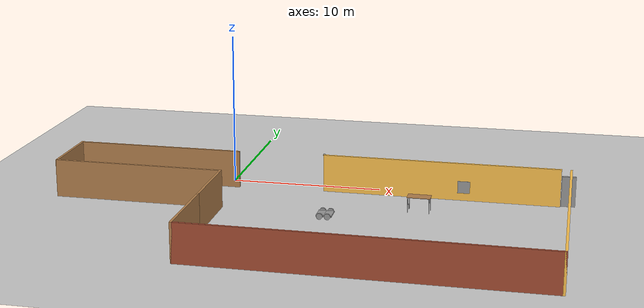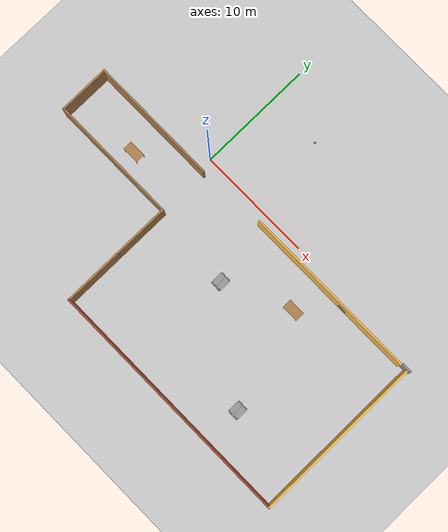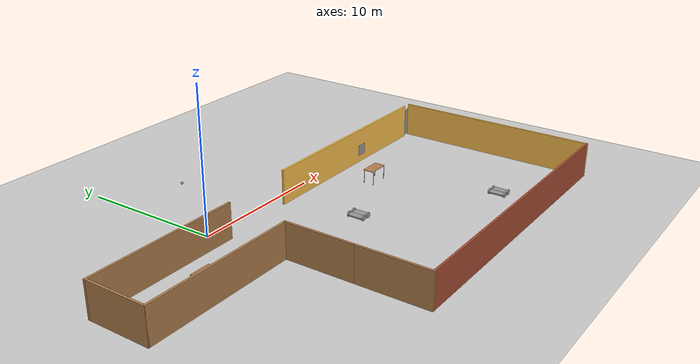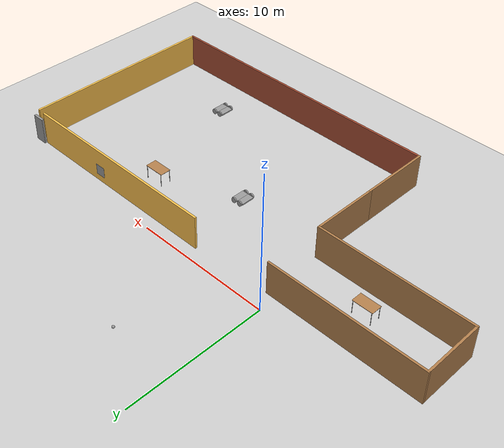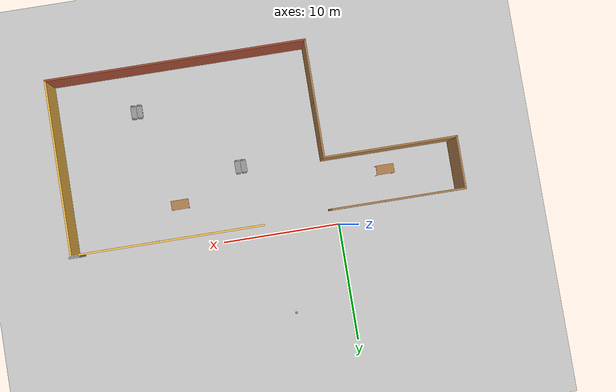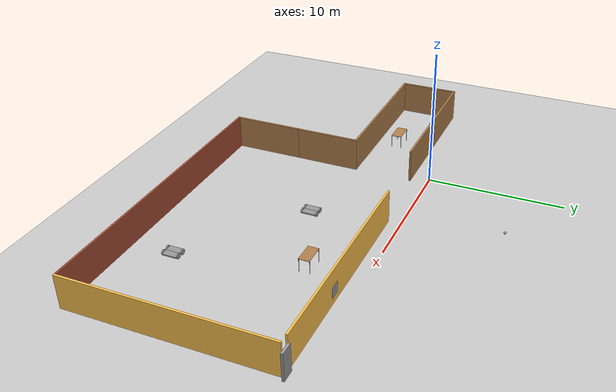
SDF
<sdf version="1.6">
 <world name="default">
  <plugin name="hello" filename="libhello.so"/>
  <light name="sun" type="directional">
   <pose>0 0 10 0 -0 0</pose>
   <diffuse>0.8 0.8 0.8 1</diffuse>
   <specular>0.2 0.2 0.2 1</specular>
   <attenuation>
    <range>1000</range>
    <constant>0.9</constant>
    <linear>0.01</linear>
    <quadratic>0.001</quadratic>
   </attenuation>
   <direction>-0.5 0.1 -0.9</direction>
  </light>
  <model name="ground_plane">
   <static>1</static>
   <link name="link">
    <collision name="collision">
     <geometry><plane><normal>0 0 1</normal><size>100 100</size></plane></geometry>
     <surface><friction><ode><mu>100</mu><mu2>50</mu2></ode></friction></surface>
    </collision>
    <visual name="visual">
     <cast_shadows>0</cast_shadows>
     <geometry><plane><normal>0 0 1</normal><size>100 100</size></plane></geometry>
     <material>
      <script><uri>file://media/materials/scripts/gazebo.material</uri><name>Gazebo/Grey</name></script>
     </material>
    </visual>
   </link>
  </model>
  <gravity>0 0 -9.8</gravity>
  <magnetic_field>6e-06 2.3e-05 -4.2e-05</magnetic_field>
  <atmosphere type="adiabatic"/>
  <physics name="default_physics" default="0" type="ode">
   <max_step_size>0.001</max_step_size>
   <real_time_factor>1</real_time_factor>
   <real_time_update_rate>1000</real_time_update_rate>
  </physics>
  <scene><ambient>0.4 0.4 0.4 1</ambient><background>0.7 0.7 0.7 1</background><shadows>1</shadows></scene>
  <spherical_coordinates>
   <surface_model>EARTH_WGS84</surface_model>
   <latitude_deg>0</latitude_deg>
   <longitude_deg>0</longitude_deg>
   <elevation>0</elevation>
   <heading_deg>0</heading_deg>
  </spherical_coordinates>
  <model name="myBuilding">
   <pose>6.025 -8.30286 0 0 -0 0</pose>
   <link name="Door_0">
    <collision name="Door_0_Collision">
     <geometry><box><size>0.9 0.17 2</size></box></geometry>
     <pose>0 0 1 0 -0 0</pose>
    </collision>
    <visual name="Door_0_Visual">
     <pose>0 0 1 0 -0 0</pose>
     <geometry><box><size>0.9 0.17 2</size></box></geometry>
     <material>
      <script><uri>file://media/materials/scripts/gazebo.material</uri><name>Gazebo/Grey</name></script>
     </material>
    </visual>
    <pose>16.3571 7.49805 0 0 -0 0</pose>
   </link>
   <link name="Wall_0">
    <collision name="Wall_0_Collision">
     <geometry><box><size>11.25 0.15 2.5</size></box></geometry>
     <pose>0 0 1.25 0 -0 0</pose>
    </collision>
    <visual name="Wall_0_Visual">
     <pose>0 0 1.25 0 -0 0</pose>
     <geometry><box><size>11.25 0.15 2.5</size></box></geometry>
     <material>
      <script><uri>file://media/materials/scripts/gazebo.material</uri><name>Gazebo/Wood</name></script>
      <ambient>1 1 1 1</ambient>
     </material>
     <meta><layer>0</layer></meta>
    </visual>
    <pose>-10.925 6.96286 0 0 -0 3.14159</pose>
   </link>
   <link name="Wall_1">
    <collision name="Wall_1_Collision">
     <geometry><box><size>4.5 0.15 2.5</size></box></geometry>
     <pose>0 0 1.25 0 -0 0</pose>
    </collision>
    <visual name="Wall_1_Visual">
     <pose>0 0 1.25 0 -0 0</pose>
     <geometry><box><size>4.5 0.15 2.5</size></box></geometry>
     <material>
      <script><uri>file://media/materials/scripts/gazebo.material</uri><name>Gazebo/Wood</name></script>
      <ambient>1 1 1 1</ambient>
     </material>
     <meta><layer>0</layer></meta>
    </visual>
    <pose>-16.475 4.78786 0 0 0 -1.5708</pose>
   </link>
   <link name="Wall_2">
    <collision name="Wall_2_Collision">
     <geometry><box><size>11.25 0.15 2.5</size></box></geometry>
     <pose>0 0 1.25 0 -0 0</pose>
    </collision>
    <visual name="Wall_2_Visual">
     <pose>0 0 1.25 0 -0 0</pose>
     <geometry><box><size>11.25 0.15 2.5</size></box></geometry>
     <material>
      <script><uri>file://media/materials/scripts/gazebo.material</uri><name>Gazebo/Wood</name></script>
      <ambient>1 1 1 1</ambient>
     </material>
     <meta><layer>0</layer></meta>
    </visual>
    <pose>-10.925 2.61286 0 0 -0 0</pose>
   </link>
   <link name="Wall_3">
    <collision name="Wall_3_Collision">
     <geometry><box><size>5 0.15 2.5</size></box></geometry>
     <pose>0 0 1.25 0 -0 0</pose>
    </collision>
    <visual name="Wall_3_Visual">
     <pose>0 0 1.25 0 -0 0</pose>
     <geometry><box><size>5 0.15 2.5</size></box></geometry>
     <material>
      <script><uri>file://media/materials/scripts/gazebo.material</uri><name>Gazebo/Wood</name></script>
      <ambient>1 1 1 1</ambient>
     </material>
     <meta><layer>0</layer></meta>
    </visual>
    <pose>-5.375 0.187858 0 0 0 -1.5708</pose>
   </link>
   <link name="Wall_4">
    <collision name="Wall_4_Collision">
     <geometry><box><size>5.25 0.15 2.5</size></box></geometry>
     <pose>0 0 1.25 0 -0 0</pose>
    </collision>
    <visual name="Wall_4_Visual">
     <pose>0 0 1.25 0 -0 0</pose>
     <geometry><box><size>5.25 0.15 2.5</size></box></geometry>
     <material>
      <script><uri>file://media/materials/scripts/gazebo.material</uri><name>Gazebo/Wood</name></script>
      <ambient>1 1 1 1</ambient>
     </material>
     <meta><layer>0</layer></meta>
    </visual>
    <pose>-5.375 -4.78714 0 0 0 -1.5708</pose>
   </link>
   <link name="Wall_5">
    <collision name="Wall_5_Collision">
     <geometry><box><size>22 0.15 2.5</size></box></geometry>
     <pose>0 0 1.25 0 -0 0</pose>
    </collision>
    <visual name="Wall_5_Visual">
     <pose>0 0 1.25 0 -0 0</pose>
     <geometry><box><size>22 0.15 2.5</size></box></geometry>
     <material>
      <script><uri>file://media/materials/scripts/gazebo.material</uri><name>Gazebo/Bricks</name></script>
      <ambient>1 1 1 1</ambient>
     </material>
     <meta><layer>0</layer></meta>
    </visual>
    <pose>5.55 -7.33714 0 0 -0 0</pose>
   </link>
   <link name="Wall_6">
    <collision name="Wall_6_Collision">
     <geometry><box><size>14.75 0.15 2.5</size></box></geometry>
     <pose>0 0 1.25 0 -0 0</pose>
    </collision>
    <visual name="Wall_6_Visual">
     <pose>0 0 1.25 0 -0 0</pose>
     <geometry><box><size>14.75 0.15 2.5</size></box></geometry>
     <material>
      <script><uri>file://media/materials/scripts/gazebo.material</uri><name>Gazebo/Grey</name></script>
      <ambient>1 0.764706 0.305882 1</ambient>
     </material>
     <meta><layer>0</layer></meta>
    </visual>
    <pose>16.475 -0.037143 0 0 -0 1.5708</pose>
   </link>
   <link name="Wall_8">
    <collision name="Wall_8_Collision">
     <geometry><box><size>15.5 0.15 2.5</size></box></geometry>
     <pose>0 0 1.25 0 -0 0</pose>
    </collision>
    <visual name="Wall_8_Visual">
     <pose>0 0 1.25 0 -0 0</pose>
     <geometry><box><size>15.5 0.15 2.5</size></box></geometry>
     <material>
      <script><uri>file://media/materials/scripts/gazebo.material</uri><name>Gazebo/Grey</name></script>
      <ambient>1 0.764706 0.305882 1</ambient>
     </material>
     <meta><layer>0</layer></meta>
    </visual>
    <pose>8.11897 7.33714 0 0 -0 3.14159</pose>
   </link>
   <link name="Window_0">
    <collision name="Window_0_Collision">
     <geometry><box><size>0.8 0.17 0.8</size></box></geometry>
     <pose>0 0 0.4 0 -0 0</pose>
    </collision>
    <visual name="Window_0_Visual">
     <pose>0 0 0.4 0 -0 0</pose>
     <geometry><box><size>0.8 0.17 0.8</size></box></geometry>
     <material>
      <script><uri>file://media/materials/scripts/gazebo.material</uri><name>Gazebo/Grey</name></script>
     </material>
    </visual>
    <pose>9.67944 7.33714 0.5 0 -0 0</pose>
   </link>
   <static>1</static>
  </model>
  <model name="table">
   <static>1</static>
   <link name="link">
    <collision name="surface">
     <pose>0 0 1 0 -0 0</pose>
     <geometry><box><size>1.5 0.8 0.03</size></box></geometry>
     <surface><friction><ode><mu>0.6</mu><mu2>0.6</mu2></ode></friction></surface>
    </collision>
    <visual name="visual1">
     <pose>0 0 1 0 -0 0</pose>
     <geometry><box><size>1.5 0.8 0.03</size></box></geometry>
     <material>
      <script><uri>file://media/materials/scripts/gazebo.material</uri><name>Gazebo/Wood</name></script>
     </material>
    </visual>
    <collision name="front_left_leg">
     <pose>0.68 0.38 0.5 0 -0 0</pose>
     <geometry><cylinder><radius>0.02</radius><length>1</length></cylinder></geometry>
    </collision>
    <visual name="front_left_leg">
     <pose>0.68 0.38 0.5 0 -0 0</pose>
     <geometry><cylinder><radius>0.02</radius><length>1</length></cylinder></geometry>
     <material>
      <script><uri>file://media/materials/scripts/gazebo.material</uri><name>Gazebo/Grey</name></script>
     </material>
    </visual>
    <collision name="front_right_leg">
     <pose>0.68 -0.38 0.5 0 -0 0</pose>
     <geometry><cylinder><radius>0.02</radius><length>1</length></cylinder></geometry>
    </collision>
    <visual name="front_right_leg">
     <pose>0.68 -0.38 0.5 0 -0 0</pose>
     <geometry><cylinder><radius>0.02</radius><length>1</length></cylinder></geometry>
     <material>
      <script><uri>file://media/materials/scripts/gazebo.material</uri><name>Gazebo/Grey</name></script>
     </material>
    </visual>
    <collision name="back_right_leg">
     <pose>-0.68 -0.38 0.5 0 -0 0</pose>
     <geometry><cylinder><radius>0.02</radius><length>1</length></cylinder></geometry>
    </collision>
    <visual name="back_right_leg">
     <pose>-0.68 -0.38 0.5 0 -0 0</pose>
     <geometry><cylinder><radius>0.02</radius><length>1</length></cylinder></geometry>
     <material>
      <script><uri>file://media/materials/scripts/gazebo.material</uri><name>Gazebo/Grey</name></script>
     </material>
    </visual>
    <collision name="back_left_leg">
     <pose>-0.68 0.38 0.5 0 -0 0</pose>
     <geometry><cylinder><radius>0.02</radius><length>1</length></cylinder></geometry>
    </collision>
    <visual name="back_left_leg">
     <pose>-0.68 0.38 0.5 0 -0 0</pose>
     <geometry><cylinder><radius>0.02</radius><length>1</length></cylinder></geometry>
     <material>
      <script><uri>file://media/materials/scripts/gazebo.material</uri><name>Gazebo/Grey</name></script>
     </material>
    </visual>
   </link>
   <pose>13.1599 -3.79906 0 0 -0 0</pose>
  </model>
  <model name="table_0">
   <static>1</static>
   <link name="link">
    <collision name="surface">
     <pose>0 0 1 0 -0 0</pose>
     <geometry><box><size>1.5 0.8 0.03</size></box></geometry>
     <surface><friction><ode><mu>0.6</mu><mu2>0.6</mu2></ode></friction></surface>
    </collision>
    <visual name="visual1">
     <pose>0 0 1 0 -0 0</pose>
     <geometry><box><size>1.5 0.8 0.03</size></box></geometry>
     <material>
      <script><uri>file://media/materials/scripts/gazebo.material</uri><name>Gazebo/Wood</name></script>
     </material>
    </visual>
    <collision name="front_left_leg">
     <pose>0.68 0.38 0.5 0 -0 0</pose>
     <geometry><cylinder><radius>0.02</radius><length>1</length></cylinder></geometry>
    </collision>
    <visual name="front_left_leg">
     <pose>0.68 0.38 0.5 0 -0 0</pose>
     <geometry><cylinder><radius>0.02</radius><length>1</length></cylinder></geometry>
     <material>
      <script><uri>file://media/materials/scripts/gazebo.material</uri><name>Gazebo/Grey</name></script>
     </material>
    </visual>
    <collision name="front_right_leg">
     <pose>0.68 -0.38 0.5 0 -0 0</pose>
     <geometry><cylinder><radius>0.02</radius><length>1</length></cylinder></geometry>
    </collision>
    <visual name="front_right_leg">
     <pose>0.68 -0.38 0.5 0 -0 0</pose>
     <geometry><cylinder><radius>0.02</radius><length>1</length></cylinder></geometry>
     <material>
      <script><uri>file://media/materials/scripts/gazebo.material</uri><name>Gazebo/Grey</name></script>
     </material>
    </visual>
    <collision name="back_right_leg">
     <pose>-0.68 -0.38 0.5 0 -0 0</pose>
     <geometry><cylinder><radius>0.02</radius><length>1</length></cylinder></geometry>
    </collision>
    <visual name="back_right_leg">
     <pose>-0.68 -0.38 0.5 0 -0 0</pose>
     <geometry><cylinder><radius>0.02</radius><length>1</length></cylinder></geometry>
     <material>
      <script><uri>file://media/materials/scripts/gazebo.material</uri><name>Gazebo/Grey</name></script>
     </material>
    </visual>
    <collision name="back_left_leg">
     <pose>-0.68 0.38 0.5 0 -0 0</pose>
     <geometry><cylinder><radius>0.02</radius><length>1</length></cylinder></geometry>
    </collision>
    <visual name="back_left_leg">
     <pose>-0.68 0.38 0.5 0 -0 0</pose>
     <geometry><cylinder><radius>0.02</radius><length>1</length></cylinder></geometry>
     <material>
      <script><uri>file://media/materials/scripts/gazebo.material</uri><name>Gazebo/Grey</name></script>
     </material>
    </visual>
   </link>
   <pose>-4.49489 -4.01415 0 0 -0 0</pose>
  </model>
  <model name="newRobot">
   <link name="link_3">
    <pose>0.249895 0 0 0 -0 0</pose>
    <inertial>
     <mass>1</mass>
     <inertia>
      <ixx>0.166667</ixx>
      <ixy>0</ixy>
      <ixz>0</ixz>
      <iyy>0.166667</iyy>
      <iyz>0</iyz>
      <izz>0.166667</izz>
     </inertia>
    </inertial>
    <visual name="visual">
     <geometry><box><size>0.5 1 0.1</size></box></geometry>
     <material>
      <lighting>1</lighting>
      <script><uri>file://media/materials/scripts/gazebo.material</uri><name>Gazebo/Grey</name></script>
      <shader type="pixel"><normal_map>__default__</normal_map></shader>
      <ambient>0.3 0.3 0.3 1</ambient>
      <diffuse>0.7 0.7 0.7 1</diffuse>
      <specular>0.01 0.01 0.01 1</specular>
      <emissive>0 0 0 1</emissive>
     </material>
    </visual>
    <collision name="collision">
     <geometry><box><size>0.5 1 0.1</size></box></geometry>
     <surface>
      <friction>
       <ode><mu>1</mu><mu2>1</mu2><fdir1>0 0 0</fdir1><slip1>0</slip1><slip2>0</slip2></ode>
       <torsional>
        <coefficient>1</coefficient>
        <patch_radius>0</patch_radius>
        <surface_radius>0</surface_radius>
        <use_patch_radius>1</use_patch_radius>
        <ode><slip>0</slip></ode>
       </torsional>
      </friction>
      <bounce><restitution_coefficient>0</restitution_coefficient><threshold>1e+06</threshold></bounce>
      <contact>
       <collide_without_contact>0</collide_without_contact>
       <collide_without_contact_bitmask>1</collide_without_contact_bitmask>
       <collide_bitmask>1</collide_bitmask>
       <ode>
        <soft_cfm>0</soft_cfm>
        <soft_erp>0.2</soft_erp>
        <kp>1e+13</kp>
        <kd>1</kd>
        <max_vel>0.01</max_vel>
        <min_depth>0</min_depth>
       </ode>
       <bullet>
        <split_impulse>1</split_impulse>
        <split_impulse_penetration_threshold>-0.01</split_impulse_penetration_threshold>
        <soft_cfm>0</soft_cfm>
        <soft_erp>0.2</soft_erp>
        <kp>1e+13</kp>
        <kd>1</kd>
       </bullet>
      </contact>
     </surface>
    </collision>
   </link>
   <link name="link_3_clone">
    <pose>-0.249895 0 0 0 -0 0</pose>
    <inertial>
     <mass>1</mass>
     <inertia>
      <ixx>0.166667</ixx>
      <ixy>0</ixy>
      <ixz>0</ixz>
      <iyy>0.166667</iyy>
      <iyz>0</iyz>
      <izz>0.166667</izz>
     </inertia>
    </inertial>
    <visual name="visual">
     <geometry><box><size>0.5 1 0.1</size></box></geometry>
     <material>
      <lighting>1</lighting>
      <script><uri>file://media/materials/scripts/gazebo.material</uri><name>Gazebo/Grey</name></script>
      <shader type="pixel"><normal_map>__default__</normal_map></shader>
      <ambient>0.3 0.3 0.3 1</ambient>
      <diffuse>0.7 0.7 0.7 1</diffuse>
      <specular>0.01 0.01 0.01 1</specular>
      <emissive>0 0 0 1</emissive>
     </material>
    </visual>
    <collision name="collision">
     <geometry><box><size>0.5 1 0.1</size></box></geometry>
     <surface>
      <friction>
       <ode><mu>1</mu><mu2>1</mu2><fdir1>0 0 0</fdir1><slip1>0</slip1><slip2>0</slip2></ode>
       <torsional>
        <coefficient>1</coefficient>
        <patch_radius>0</patch_radius>
        <surface_radius>0</surface_radius>
        <use_patch_radius>1</use_patch_radius>
        <ode><slip>0</slip></ode>
       </torsional>
      </friction>
      <bounce><restitution_coefficient>0</restitution_coefficient><threshold>1e+06</threshold></bounce>
      <contact>
       <collide_without_contact>0</collide_without_contact>
       <collide_without_contact_bitmask>1</collide_without_contact_bitmask>
       <collide_bitmask>1</collide_bitmask>
       <ode>
        <soft_cfm>0</soft_cfm>
        <soft_erp>0.2</soft_erp>
        <kp>1e+13</kp>
        <kd>1</kd>
        <max_vel>0.01</max_vel>
        <min_depth>0</min_depth>
       </ode>
       <bullet>
        <split_impulse>1</split_impulse>
        <split_impulse_penetration_threshold>-0.01</split_impulse_penetration_threshold>
        <soft_cfm>0</soft_cfm>
        <soft_erp>0.2</soft_erp>
        <kp>1e+13</kp>
        <kd>1</kd>
       </bullet>
      </contact>
     </surface>
    </collision>
   </link>
   <link name="link_4">
    <pose>0.249895 -0.550159 0 1.57 -0 0</pose>
    <inertial>
     <mass>1</mass>
     <inertia><ixx>0.145833</ixx><ixy>0</ixy><ixz>0</ixz><iyy>0.145833</iyy><iyz>0</iyz><izz>0.125</izz></inertia>
    </inertial>
    <visual name="visual">
     <geometry><cylinder><radius>0.2</radius><length>0.1</length></cylinder></geometry>
     <material>
      <lighting>1</lighting>
      <script><uri>file://media/materials/scripts/gazebo.material</uri><name>Gazebo/Grey</name></script>
      <shader type="pixel"><normal_map>__default__</normal_map></shader>
      <ambient>0.3 0.3 0.3 1</ambient>
      <diffuse>0.7 0.7 0.7 1</diffuse>
      <specular>0.01 0.01 0.01 1</specular>
      <emissive>0 0 0 1</emissive>
     </material>
    </visual>
    <collision name="collision">
     <geometry><cylinder><radius>0.2</radius><length>0.1</length></cylinder></geometry>
     <surface>
      <friction>
       <ode><mu>1</mu><mu2>1</mu2><fdir1>0 0 0</fdir1><slip1>0</slip1><slip2>0</slip2></ode>
       <torsional>
        <coefficient>1</coefficient>
        <patch_radius>0</patch_radius>
        <surface_radius>0</surface_radius>
        <use_patch_radius>1</use_patch_radius>
        <ode><slip>0</slip></ode>
       </torsional>
      </friction>
      <bounce><restitution_coefficient>0</restitution_coefficient><threshold>1e+06</threshold></bounce>
      <contact>
       <collide_without_contact>0</collide_without_contact>
       <collide_without_contact_bitmask>1</collide_without_contact_bitmask>
       <collide_bitmask>1</collide_bitmask>
       <ode>
        <soft_cfm>0</soft_cfm>
        <soft_erp>0.2</soft_erp>
        <kp>1e+13</kp>
        <kd>1</kd>
        <max_vel>0.01</max_vel>
        <min_depth>0</min_depth>
       </ode>
       <bullet>
        <split_impulse>1</split_impulse>
        <split_impulse_penetration_threshold>-0.01</split_impulse_penetration_threshold>
        <soft_cfm>0</soft_cfm>
        <soft_erp>0.2</soft_erp>
        <kp>1e+13</kp>
        <kd>1</kd>
       </bullet>
      </contact>
     </surface>
    </collision>
   </link>
   <link name="link_4_clone">
    <pose>0.249895 0.550159 0 1.57 -0 0</pose>
    <inertial>
     <mass>1</mass>
     <inertia><ixx>0.145833</ixx><ixy>0</ixy><ixz>0</ixz><iyy>0.145833</iyy><iyz>0</iyz><izz>0.125</izz></inertia>
    </inertial>
    <visual name="visual">
     <geometry><cylinder><radius>0.2</radius><length>0.1</length></cylinder></geometry>
     <material>
      <lighting>1</lighting>
      <script><uri>file://media/materials/scripts/gazebo.material</uri><name>Gazebo/Grey</name></script>
      <shader type="pixel"><normal_map>__default__</normal_map></shader>
      <ambient>0.3 0.3 0.3 1</ambient>
      <diffuse>0.7 0.7 0.7 1</diffuse>
      <specular>0.01 0.01 0.01 1</specular>
      <emissive>0 0 0 1</emissive>
     </material>
    </visual>
    <collision name="collision">
     <geometry><cylinder><radius>0.2</radius><length>0.1</length></cylinder></geometry>
     <surface>
      <friction>
       <ode><mu>1</mu><mu2>1</mu2><fdir1>0 0 0</fdir1><slip1>0</slip1><slip2>0</slip2></ode>
       <torsional>
        <coefficient>1</coefficient>
        <patch_radius>0</patch_radius>
        <surface_radius>0</surface_radius>
        <use_patch_radius>1</use_patch_radius>
        <ode><slip>0</slip></ode>
       </torsional>
      </friction>
      <bounce><restitution_coefficient>0</restitution_coefficient><threshold>1e+06</threshold></bounce>
      <contact>
       <collide_without_contact>0</collide_without_contact>
       <collide_without_contact_bitmask>1</collide_without_contact_bitmask>
       <collide_bitmask>1</collide_bitmask>
       <ode>
        <soft_cfm>0</soft_cfm>
        <soft_erp>0.2</soft_erp>
        <kp>1e+13</kp>
        <kd>1</kd>
        <max_vel>0.01</max_vel>
        <min_depth>0</min_depth>
       </ode>
       <bullet>
        <split_impulse>1</split_impulse>
        <split_impulse_penetration_threshold>-0.01</split_impulse_penetration_threshold>
        <soft_cfm>0</soft_cfm>
        <soft_erp>0.2</soft_erp>
        <kp>1e+13</kp>
        <kd>1</kd>
       </bullet>
      </contact>
     </surface>
    </collision>
   </link>
   <link name="link_4_clone_0">
    <pose>-0.249895 0.550159 0 1.57 -0 0</pose>
    <inertial>
     <mass>1</mass>
     <inertia><ixx>0.145833</ixx><ixy>0</ixy><ixz>0</ixz><iyy>0.145833</iyy><iyz>0</iyz><izz>0.125</izz></inertia>
    </inertial>
    <visual name="visual">
     <geometry><cylinder><radius>0.2</radius><length>0.1</length></cylinder></geometry>
     <material>
      <lighting>1</lighting>
      <script><uri>file://media/materials/scripts/gazebo.material</uri><name>Gazebo/Grey</name></script>
      <shader type="pixel"><normal_map>__default__</normal_map></shader>
      <ambient>0.3 0.3 0.3 1</ambient>
      <diffuse>0.7 0.7 0.7 1</diffuse>
      <specular>0.01 0.01 0.01 1</specular>
      <emissive>0 0 0 1</emissive>
     </material>
    </visual>
    <collision name="collision">
     <geometry><cylinder><radius>0.2</radius><length>0.1</length></cylinder></geometry>
     <surface>
      <friction>
       <ode><mu>1</mu><mu2>1</mu2><fdir1>0 0 0</fdir1><slip1>0</slip1><slip2>0</slip2></ode>
       <torsional>
        <coefficient>1</coefficient>
        <patch_radius>0</patch_radius>
        <surface_radius>0</surface_radius>
        <use_patch_radius>1</use_patch_radius>
        <ode><slip>0</slip></ode>
       </torsional>
      </friction>
      <bounce><restitution_coefficient>0</restitution_coefficient><threshold>1e+06</threshold></bounce>
      <contact>
       <collide_without_contact>0</collide_without_contact>
       <collide_without_contact_bitmask>1</collide_without_contact_bitmask>
       <collide_bitmask>1</collide_bitmask>
       <ode>
        <soft_cfm>0</soft_cfm>
        <soft_erp>0.2</soft_erp>
        <kp>1e+13</kp>
        <kd>1</kd>
        <max_vel>0.01</max_vel>
        <min_depth>0</min_depth>
       </ode>
       <bullet>
        <split_impulse>1</split_impulse>
        <split_impulse_penetration_threshold>-0.01</split_impulse_penetration_threshold>
        <soft_cfm>0</soft_cfm>
        <soft_erp>0.2</soft_erp>
        <kp>1e+13</kp>
        <kd>1</kd>
       </bullet>
      </contact>
     </surface>
    </collision>
   </link>
   <link name="link_4_clone_1">
    <pose>-0.249895 -0.550159 0 1.57 -0 0</pose>
    <inertial>
     <mass>1</mass>
     <inertia><ixx>0.145833</ixx><ixy>0</ixy><ixz>0</ixz><iyy>0.145833</iyy><iyz>0</iyz><izz>0.125</izz></inertia>
    </inertial>
    <visual name="visual">
     <geometry><cylinder><radius>0.2</radius><length>0.1</length></cylinder></geometry>
     <material>
      <lighting>1</lighting>
      <script><uri>file://media/materials/scripts/gazebo.material</uri><name>Gazebo/Grey</name></script>
      <shader type="pixel"><normal_map>__default__</normal_map></shader>
      <ambient>0.3 0.3 0.3 1</ambient>
      <diffuse>0.7 0.7 0.7 1</diffuse>
      <specular>0.01 0.01 0.01 1</specular>
      <emissive>0 0 0 1</emissive>
     </material>
    </visual>
    <collision name="collision">
     <geometry><cylinder><radius>0.2</radius><length>0.1</length></cylinder></geometry>
     <surface>
      <friction>
       <ode><mu>1</mu><mu2>1</mu2><fdir1>0 0 0</fdir1><slip1>0</slip1><slip2>0</slip2></ode>
       <torsional>
        <coefficient>1</coefficient>
        <patch_radius>0</patch_radius>
        <surface_radius>0</surface_radius>
        <use_patch_radius>1</use_patch_radius>
        <ode><slip>0</slip></ode>
       </torsional>
      </friction>
      <bounce><restitution_coefficient>0</restitution_coefficient><threshold>1e+06</threshold></bounce>
      <contact>
       <collide_without_contact>0</collide_without_contact>
       <collide_without_contact_bitmask>1</collide_without_contact_bitmask>
       <collide_bitmask>1</collide_bitmask>
       <ode>
        <soft_cfm>0</soft_cfm>
        <soft_erp>0.2</soft_erp>
        <kp>1e+13</kp>
        <kd>1</kd>
        <max_vel>0.01</max_vel>
        <min_depth>0</min_depth>
       </ode>
       <bullet>
        <split_impulse>1</split_impulse>
        <split_impulse_penetration_threshold>-0.01</split_impulse_penetration_threshold>
        <soft_cfm>0</soft_cfm>
        <soft_erp>0.2</soft_erp>
        <kp>1e+13</kp>
        <kd>1</kd>
       </bullet>
      </contact>
     </surface>
    </collision>
   </link>
   <joint name="link_3_JOINT_0" type="revolute">
    <parent>link_3</parent>
    <child>link_4</child>
    <axis>
     <xyz>1 0 0</xyz>
     <use_parent_model_frame>0</use_parent_model_frame>
     <limit>
      <lower>-1.79769e+308</lower>
      <upper>1.79769e+308</upper>
      <effort>-1</effort>
      <velocity>-1</velocity>
     </limit>
     <dynamics>
      <spring_reference>0</spring_reference>
      <spring_stiffness>0</spring_stiffness>
      <damping>0</damping>
     </dynamics>
    </axis>
    <physics>
     <ode><limit><cfm>0</cfm><erp>0.2</erp></limit><suspension><cfm>0</cfm><erp>0.2</erp></suspension></ode>
    </physics>
   </joint>
   <joint name="link_3_JOINT_1" type="revolute">
    <parent>link_3</parent>
    <child>link_4_clone</child>
    <axis>
     <xyz>1 0 0</xyz>
     <use_parent_model_frame>0</use_parent_model_frame>
     <limit>
      <lower>-1.79769e+308</lower>
      <upper>1.79769e+308</upper>
      <effort>-1</effort>
      <velocity>-1</velocity>
     </limit>
     <dynamics>
      <spring_reference>0</spring_reference>
      <spring_stiffness>0</spring_stiffness>
      <damping>0</damping>
     </dynamics>
    </axis>
    <physics>
     <ode><limit><cfm>0</cfm><erp>0.2</erp></limit><suspension><cfm>0</cfm><erp>0.2</erp></suspension></ode>
    </physics>
   </joint>
   <joint name="link_3_clone_JOINT_3" type="revolute">
    <parent>link_3_clone</parent>
    <child>link_4_clone_1</child>
    <axis>
     <xyz>1 0 0</xyz>
     <use_parent_model_frame>0</use_parent_model_frame>
     <limit>
      <lower>-1.79769e+308</lower>
      <upper>1.79769e+308</upper>
      <effort>-1</effort>
      <velocity>-1</velocity>
     </limit>
     <dynamics>
      <spring_reference>0</spring_reference>
      <spring_stiffness>0</spring_stiffness>
      <damping>0</damping>
     </dynamics>
    </axis>
    <physics>
     <ode><limit><cfm>0</cfm><erp>0.2</erp></limit><suspension><cfm>0</cfm><erp>0.2</erp></suspension></ode>
    </physics>
   </joint>
   <joint name="link_3_clone_JOINT_4" type="revolute">
    <parent>link_3_clone</parent>
    <child>link_4_clone_0</child>
    <axis>
     <xyz>1 0 0</xyz>
     <use_parent_model_frame>0</use_parent_model_frame>
     <limit>
      <lower>-1.79769e+308</lower>
      <upper>1.79769e+308</upper>
      <effort>-1</effort>
      <velocity>-1</velocity>
     </limit>
     <dynamics>
      <spring_reference>0</spring_reference>
      <spring_stiffness>0</spring_stiffness>
      <damping>0</damping>
     </dynamics>
    </axis>
    <physics>
     <ode><limit><cfm>0</cfm><erp>0.2</erp></limit><suspension><cfm>0</cfm><erp>0.2</erp></suspension></ode>
    </physics>
   </joint>
   <static>1</static>
   <allow_auto_disable>0</allow_auto_disable>
   <pose>7.57587 -6.2376 0.27216 0 -0 0</pose>
  </model>
  <model name="newRobot_0">
   <link name="link_3">
    <pose>0.249895 0 0 0 -0 0</pose>
    <inertial>
     <mass>1</mass>
     <inertia>
      <ixx>0.166667</ixx>
      <ixy>0</ixy>
      <ixz>0</ixz>
      <iyy>0.166667</iyy>
      <iyz>0</iyz>
      <izz>0.166667</izz>
     </inertia>
    </inertial>
    <visual name="visual">
     <geometry><box><size>0.5 1 0.1</size></box></geometry>
     <material>
      <lighting>1</lighting>
      <script><uri>file://media/materials/scripts/gazebo.material</uri><name>Gazebo/Grey</name></script>
      <shader type="pixel"><normal_map>__default__</normal_map></shader>
      <ambient>0.3 0.3 0.3 1</ambient>
      <diffuse>0.7 0.7 0.7 1</diffuse>
      <specular>0.01 0.01 0.01 1</specular>
      <emissive>0 0 0 1</emissive>
     </material>
    </visual>
    <collision name="collision">
     <geometry><box><size>0.5 1 0.1</size></box></geometry>
     <surface>
      <friction>
       <ode><mu>1</mu><mu2>1</mu2><fdir1>0 0 0</fdir1><slip1>0</slip1><slip2>0</slip2></ode>
       <torsional>
        <coefficient>1</coefficient>
        <patch_radius>0</patch_radius>
        <surface_radius>0</surface_radius>
        <use_patch_radius>1</use_patch_radius>
        <ode><slip>0</slip></ode>
       </torsional>
      </friction>
      <bounce><restitution_coefficient>0</restitution_coefficient><threshold>1e+06</threshold></bounce>
      <contact>
       <collide_without_contact>0</collide_without_contact>
       <collide_without_contact_bitmask>1</collide_without_contact_bitmask>
       <collide_bitmask>1</collide_bitmask>
       <ode>
        <soft_cfm>0</soft_cfm>
        <soft_erp>0.2</soft_erp>
        <kp>1e+13</kp>
        <kd>1</kd>
        <max_vel>0.01</max_vel>
        <min_depth>0</min_depth>
       </ode>
       <bullet>
        <split_impulse>1</split_impulse>
        <split_impulse_penetration_threshold>-0.01</split_impulse_penetration_threshold>
        <soft_cfm>0</soft_cfm>
        <soft_erp>0.2</soft_erp>
        <kp>1e+13</kp>
        <kd>1</kd>
       </bullet>
      </contact>
     </surface>
    </collision>
   </link>
   <link name="link_3_clone">
    <pose>-0.249895 0 0 0 -0 0</pose>
    <inertial>
     <mass>1</mass>
     <inertia>
      <ixx>0.166667</ixx>
      <ixy>0</ixy>
      <ixz>0</ixz>
      <iyy>0.166667</iyy>
      <iyz>0</iyz>
      <izz>0.166667</izz>
     </inertia>
    </inertial>
    <visual name="visual">
     <geometry><box><size>0.5 1 0.1</size></box></geometry>
     <material>
      <lighting>1</lighting>
      <script><uri>file://media/materials/scripts/gazebo.material</uri><name>Gazebo/Grey</name></script>
      <shader type="pixel"><normal_map>__default__</normal_map></shader>
      <ambient>0.3 0.3 0.3 1</ambient>
      <diffuse>0.7 0.7 0.7 1</diffuse>
      <specular>0.01 0.01 0.01 1</specular>
      <emissive>0 0 0 1</emissive>
     </material>
    </visual>
    <collision name="collision">
     <geometry><box><size>0.5 1 0.1</size></box></geometry>
     <surface>
      <friction>
       <ode><mu>1</mu><mu2>1</mu2><fdir1>0 0 0</fdir1><slip1>0</slip1><slip2>0</slip2></ode>
       <torsional>
        <coefficient>1</coefficient>
        <patch_radius>0</patch_radius>
        <surface_radius>0</surface_radius>
        <use_patch_radius>1</use_patch_radius>
        <ode><slip>0</slip></ode>
       </torsional>
      </friction>
      <bounce><restitution_coefficient>0</restitution_coefficient><threshold>1e+06</threshold></bounce>
      <contact>
       <collide_without_contact>0</collide_without_contact>
       <collide_without_contact_bitmask>1</collide_without_contact_bitmask>
       <collide_bitmask>1</collide_bitmask>
       <ode>
        <soft_cfm>0</soft_cfm>
        <soft_erp>0.2</soft_erp>
        <kp>1e+13</kp>
        <kd>1</kd>
        <max_vel>0.01</max_vel>
        <min_depth>0</min_depth>
       </ode>
       <bullet>
        <split_impulse>1</split_impulse>
        <split_impulse_penetration_threshold>-0.01</split_impulse_penetration_threshold>
        <soft_cfm>0</soft_cfm>
        <soft_erp>0.2</soft_erp>
        <kp>1e+13</kp>
        <kd>1</kd>
       </bullet>
      </contact>
     </surface>
    </collision>
   </link>
   <link name="link_4">
    <pose>0.249895 -0.550159 0 1.57 -0 0</pose>
    <inertial>
     <mass>1</mass>
     <inertia><ixx>0.145833</ixx><ixy>0</ixy><ixz>0</ixz><iyy>0.145833</iyy><iyz>0</iyz><izz>0.125</izz></inertia>
    </inertial>
    <visual name="visual">
     <geometry><cylinder><radius>0.2</radius><length>0.1</length></cylinder></geometry>
     <material>
      <lighting>1</lighting>
      <script><uri>file://media/materials/scripts/gazebo.material</uri><name>Gazebo/Grey</name></script>
      <shader type="pixel"><normal_map>__default__</normal_map></shader>
      <ambient>0.3 0.3 0.3 1</ambient>
      <diffuse>0.7 0.7 0.7 1</diffuse>
      <specular>0.01 0.01 0.01 1</specular>
      <emissive>0 0 0 1</emissive>
     </material>
    </visual>
    <collision name="collision">
     <geometry><cylinder><radius>0.2</radius><length>0.1</length></cylinder></geometry>
     <surface>
      <friction>
       <ode><mu>1</mu><mu2>1</mu2><fdir1>0 0 0</fdir1><slip1>0</slip1><slip2>0</slip2></ode>
       <torsional>
        <coefficient>1</coefficient>
        <patch_radius>0</patch_radius>
        <surface_radius>0</surface_radius>
        <use_patch_radius>1</use_patch_radius>
        <ode><slip>0</slip></ode>
       </torsional>
      </friction>
      <bounce><restitution_coefficient>0</restitution_coefficient><threshold>1e+06</threshold></bounce>
      <contact>
       <collide_without_contact>0</collide_without_contact>
       <collide_without_contact_bitmask>1</collide_without_contact_bitmask>
       <collide_bitmask>1</collide_bitmask>
       <ode>
        <soft_cfm>0</soft_cfm>
        <soft_erp>0.2</soft_erp>
        <kp>1e+13</kp>
        <kd>1</kd>
        <max_vel>0.01</max_vel>
        <min_depth>0</min_depth>
       </ode>
       <bullet>
        <split_impulse>1</split_impulse>
        <split_impulse_penetration_threshold>-0.01</split_impulse_penetration_threshold>
        <soft_cfm>0</soft_cfm>
        <soft_erp>0.2</soft_erp>
        <kp>1e+13</kp>
        <kd>1</kd>
       </bullet>
      </contact>
     </surface>
    </collision>
   </link>
   <link name="link_4_clone">
    <pose>0.249895 0.550159 0 1.57 -0 0</pose>
    <inertial>
     <mass>1</mass>
     <inertia><ixx>0.145833</ixx><ixy>0</ixy><ixz>0</ixz><iyy>0.145833</iyy><iyz>0</iyz><izz>0.125</izz></inertia>
    </inertial>
    <visual name="visual">
     <geometry><cylinder><radius>0.2</radius><length>0.1</length></cylinder></geometry>
     <material>
      <lighting>1</lighting>
      <script><uri>file://media/materials/scripts/gazebo.material</uri><name>Gazebo/Grey</name></script>
      <shader type="pixel"><normal_map>__default__</normal_map></shader>
      <ambient>0.3 0.3 0.3 1</ambient>
      <diffuse>0.7 0.7 0.7 1</diffuse>
      <specular>0.01 0.01 0.01 1</specular>
      <emissive>0 0 0 1</emissive>
     </material>
    </visual>
    <collision name="collision">
     <geometry><cylinder><radius>0.2</radius><length>0.1</length></cylinder></geometry>
     <surface>
      <friction>
       <ode><mu>1</mu><mu2>1</mu2><fdir1>0 0 0</fdir1><slip1>0</slip1><slip2>0</slip2></ode>
       <torsional>
        <coefficient>1</coefficient>
        <patch_radius>0</patch_radius>
        <surface_radius>0</surface_radius>
        <use_patch_radius>1</use_patch_radius>
        <ode><slip>0</slip></ode>
       </torsional>
      </friction>
      <bounce><restitution_coefficient>0</restitution_coefficient><threshold>1e+06</threshold></bounce>
      <contact>
       <collide_without_contact>0</collide_without_contact>
       <collide_without_contact_bitmask>1</collide_without_contact_bitmask>
       <collide_bitmask>1</collide_bitmask>
       <ode>
        <soft_cfm>0</soft_cfm>
        <soft_erp>0.2</soft_erp>
        <kp>1e+13</kp>
        <kd>1</kd>
        <max_vel>0.01</max_vel>
        <min_depth>0</min_depth>
       </ode>
       <bullet>
        <split_impulse>1</split_impulse>
        <split_impulse_penetration_threshold>-0.01</split_impulse_penetration_threshold>
        <soft_cfm>0</soft_cfm>
        <soft_erp>0.2</soft_erp>
        <kp>1e+13</kp>
        <kd>1</kd>
       </bullet>
      </contact>
     </surface>
    </collision>
   </link>
   <link name="link_4_clone_0">
    <pose>-0.249895 0.550159 0 1.57 -0 0</pose>
    <inertial>
     <mass>1</mass>
     <inertia><ixx>0.145833</ixx><ixy>0</ixy><ixz>0</ixz><iyy>0.145833</iyy><iyz>0</iyz><izz>0.125</izz></inertia>
    </inertial>
    <visual name="visual">
     <geometry><cylinder><radius>0.2</radius><length>0.1</length></cylinder></geometry>
     <material>
      <lighting>1</lighting>
      <script><uri>file://media/materials/scripts/gazebo.material</uri><name>Gazebo/Grey</name></script>
      <shader type="pixel"><normal_map>__default__</normal_map></shader>
      <ambient>0.3 0.3 0.3 1</ambient>
      <diffuse>0.7 0.7 0.7 1</diffuse>
      <specular>0.01 0.01 0.01 1</specular>
      <emissive>0 0 0 1</emissive>
     </material>
    </visual>
    <collision name="collision">
     <geometry><cylinder><radius>0.2</radius><length>0.1</length></cylinder></geometry>
     <surface>
      <friction>
       <ode><mu>1</mu><mu2>1</mu2><fdir1>0 0 0</fdir1><slip1>0</slip1><slip2>0</slip2></ode>
       <torsional>
        <coefficient>1</coefficient>
        <patch_radius>0</patch_radius>
        <surface_radius>0</surface_radius>
        <use_patch_radius>1</use_patch_radius>
        <ode><slip>0</slip></ode>
       </torsional>
      </friction>
      <bounce><restitution_coefficient>0</restitution_coefficient><threshold>1e+06</threshold></bounce>
      <contact>
       <collide_without_contact>0</collide_without_contact>
       <collide_without_contact_bitmask>1</collide_without_contact_bitmask>
       <collide_bitmask>1</collide_bitmask>
       <ode>
        <soft_cfm>0</soft_cfm>
        <soft_erp>0.2</soft_erp>
        <kp>1e+13</kp>
        <kd>1</kd>
        <max_vel>0.01</max_vel>
        <min_depth>0</min_depth>
       </ode>
       <bullet>
        <split_impulse>1</split_impulse>
        <split_impulse_penetration_threshold>-0.01</split_impulse_penetration_threshold>
        <soft_cfm>0</soft_cfm>
        <soft_erp>0.2</soft_erp>
        <kp>1e+13</kp>
        <kd>1</kd>
       </bullet>
      </contact>
     </surface>
    </collision>
   </link>
   <link name="link_4_clone_1">
    <pose>-0.249895 -0.550159 0 1.57 -0 0</pose>
    <inertial>
     <mass>1</mass>
     <inertia><ixx>0.145833</ixx><ixy>0</ixy><ixz>0</ixz><iyy>0.145833</iyy><iyz>0</iyz><izz>0.125</izz></inertia>
    </inertial>
    <visual name="visual">
     <geometry><cylinder><radius>0.2</radius><length>0.1</length></cylinder></geometry>
     <material>
      <lighting>1</lighting>
      <script><uri>file://media/materials/scripts/gazebo.material</uri><name>Gazebo/Grey</name></script>
      <shader type="pixel"><normal_map>__default__</normal_map></shader>
      <ambient>0.3 0.3 0.3 1</ambient>
      <diffuse>0.7 0.7 0.7 1</diffuse>
      <specular>0.01 0.01 0.01 1</specular>
      <emissive>0 0 0 1</emissive>
     </material>
    </visual>
    <collision name="collision">
     <geometry><cylinder><radius>0.2</radius><length>0.1</length></cylinder></geometry>
     <surface>
      <friction>
       <ode><mu>1</mu><mu2>1</mu2><fdir1>0 0 0</fdir1><slip1>0</slip1><slip2>0</slip2></ode>
       <torsional>
        <coefficient>1</coefficient>
        <patch_radius>0</patch_radius>
        <surface_radius>0</surface_radius>
        <use_patch_radius>1</use_patch_radius>
        <ode><slip>0</slip></ode>
       </torsional>
      </friction>
      <bounce><restitution_coefficient>0</restitution_coefficient><threshold>1e+06</threshold></bounce>
      <contact>
       <collide_without_contact>0</collide_without_contact>
       <collide_without_contact_bitmask>1</collide_without_contact_bitmask>
       <collide_bitmask>1</collide_bitmask>
       <ode>
        <soft_cfm>0</soft_cfm>
        <soft_erp>0.2</soft_erp>
        <kp>1e+13</kp>
        <kd>1</kd>
        <max_vel>0.01</max_vel>
        <min_depth>0</min_depth>
       </ode>
       <bullet>
        <split_impulse>1</split_impulse>
        <split_impulse_penetration_threshold>-0.01</split_impulse_penetration_threshold>
        <soft_cfm>0</soft_cfm>
        <soft_erp>0.2</soft_erp>
        <kp>1e+13</kp>
        <kd>1</kd>
       </bullet>
      </contact>
     </surface>
    </collision>
   </link>
   <joint name="link_3_JOINT_0" type="revolute">
    <parent>link_3</parent>
    <child>link_4</child>
    <axis>
     <xyz>1 0 0</xyz>
     <use_parent_model_frame>0</use_parent_model_frame>
     <limit>
      <lower>-1.79769e+308</lower>
      <upper>1.79769e+308</upper>
      <effort>-1</effort>
      <velocity>-1</velocity>
     </limit>
     <dynamics>
      <spring_reference>0</spring_reference>
      <spring_stiffness>0</spring_stiffness>
      <damping>0</damping>
     </dynamics>
    </axis>
    <physics>
     <ode><limit><cfm>0</cfm><erp>0.2</erp></limit><suspension><cfm>0</cfm><erp>0.2</erp></suspension></ode>
    </physics>
   </joint>
   <joint name="link_3_JOINT_1" type="revolute">
    <parent>link_3</parent>
    <child>link_4_clone</child>
    <axis>
     <xyz>1 0 0</xyz>
     <use_parent_model_frame>0</use_parent_model_frame>
     <limit>
      <lower>-1.79769e+308</lower>
      <upper>1.79769e+308</upper>
      <effort>-1</effort>
      <velocity>-1</velocity>
     </limit>
     <dynamics>
      <spring_reference>0</spring_reference>
      <spring_stiffness>0</spring_stiffness>
      <damping>0</damping>
     </dynamics>
    </axis>
    <physics>
     <ode><limit><cfm>0</cfm><erp>0.2</erp></limit><suspension><cfm>0</cfm><erp>0.2</erp></suspension></ode>
    </physics>
   </joint>
   <joint name="link_3_clone_JOINT_3" type="revolute">
    <parent>link_3_clone</parent>
    <child>link_4_clone_1</child>
    <axis>
     <xyz>1 0 0</xyz>
     <use_parent_model_frame>0</use_parent_model_frame>
     <limit>
      <lower>-1.79769e+308</lower>
      <upper>1.79769e+308</upper>
      <effort>-1</effort>
      <velocity>-1</velocity>
     </limit>
     <dynamics>
      <spring_reference>0</spring_reference>
      <spring_stiffness>0</spring_stiffness>
      <damping>0</damping>
     </dynamics>
    </axis>
    <physics>
     <ode><limit><cfm>0</cfm><erp>0.2</erp></limit><suspension><cfm>0</cfm><erp>0.2</erp></suspension></ode>
    </physics>
   </joint>
   <joint name="link_3_clone_JOINT_4" type="revolute">
    <parent>link_3_clone</parent>
    <child>link_4_clone_0</child>
    <axis>
     <xyz>1 0 0</xyz>
     <use_parent_model_frame>0</use_parent_model_frame>
     <limit>
      <lower>-1.79769e+308</lower>
      <upper>1.79769e+308</upper>
      <effort>-1</effort>
      <velocity>-1</velocity>
     </limit>
     <dynamics>
      <spring_reference>0</spring_reference>
      <spring_stiffness>0</spring_stiffness>
      <damping>0</damping>
     </dynamics>
    </axis>
    <physics>
     <ode><limit><cfm>0</cfm><erp>0.2</erp></limit><suspension><cfm>0</cfm><erp>0.2</erp></suspension></ode>
    </physics>
   </joint>
   <static>1</static>
   <allow_auto_disable>0</allow_auto_disable>
   <pose>15.6735 -12.2708 0.443359 0 -0 0</pose>
  </model>
  <model name="my_ball">
   <link name="link">
    <inertial>
     <mass>1</mass>
     <inertia><ixx>0.1</ixx><ixy>0</ixy><ixz>0</ixz><iyy>0.1</iyy><iyz>0</iyz><izz>0.1</izz></inertia>
    </inertial>
    <visual name="visual">
     <geometry><sphere><radius>0.1</radius></sphere></geometry>
     <material>
      <script><name>Gazebo/Grey</name><uri>file://media/materials/scripts/gazebo.material</uri></script>
      <shader type="pixel"><normal_map>__default__</normal_map></shader>
      <ambient>1 1 1 1</ambient>
      <diffuse>1 1 1 1</diffuse>
      <specular>1 1 1 1</specular>
      <emissive>1 1 1 1</emissive>
     </material>
    </visual>
    <collision name="collision">
     <geometry><sphere><radius>0.1</radius></sphere></geometry>
     <surface>
      <friction>
       <ode><mu>1</mu><mu2>1</mu2><fdir1>0 0 0</fdir1><slip1>0</slip1><slip2>0</slip2></ode>
       <torsional>
        <coefficient>1</coefficient>
        <patch_radius>0</patch_radius>
        <surface_radius>0</surface_radius>
        <use_patch_radius>1</use_patch_radius>
        <ode><slip>0</slip></ode>
       </torsional>
      </friction>
      <bounce><restitution_coefficient>0</restitution_coefficient><threshold>1e+06</threshold></bounce>
      <contact>
       <collide_without_contact>0</collide_without_contact>
       <collide_without_contact_bitmask>1</collide_without_contact_bitmask>
       <collide_bitmask>1</collide_bitmask>
       <ode>
        <soft_cfm>0</soft_cfm>
        <soft_erp>0.2</soft_erp>
        <kp>1e+13</kp>
        <kd>1</kd>
        <max_vel>0.01</max_vel>
        <min_depth>0</min_depth>
       </ode>
       <bullet>
        <split_impulse>1</split_impulse>
        <split_impulse_penetration_threshold>-0.01</split_impulse_penetration_threshold>
        <soft_cfm>0</soft_cfm>
        <soft_erp>0.2</soft_erp>
        <kp>1e+13</kp>
        <kd>1</kd>
       </bullet>
      </contact>
     </surface>
    </collision>
   </link>
   <static>0</static>
   <pose>4.82547 6.88307 0.1 0 -0 0</pose>
  </model>
 </world>
</sdf>
